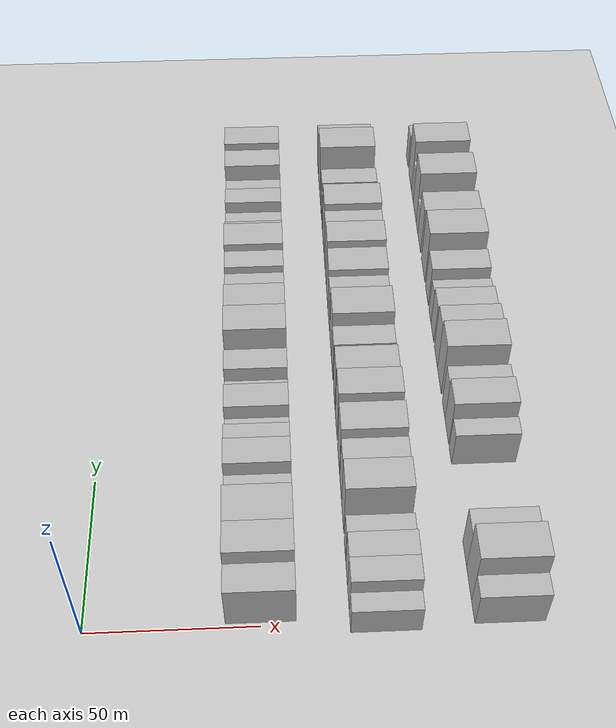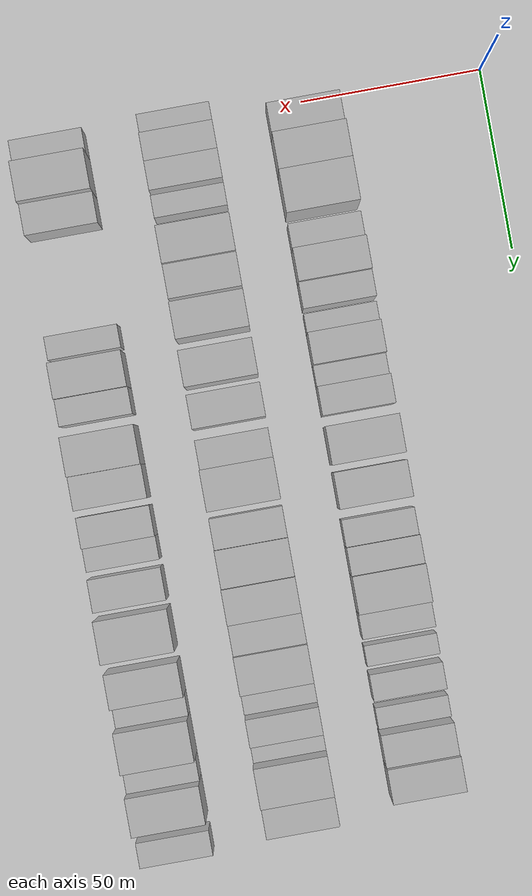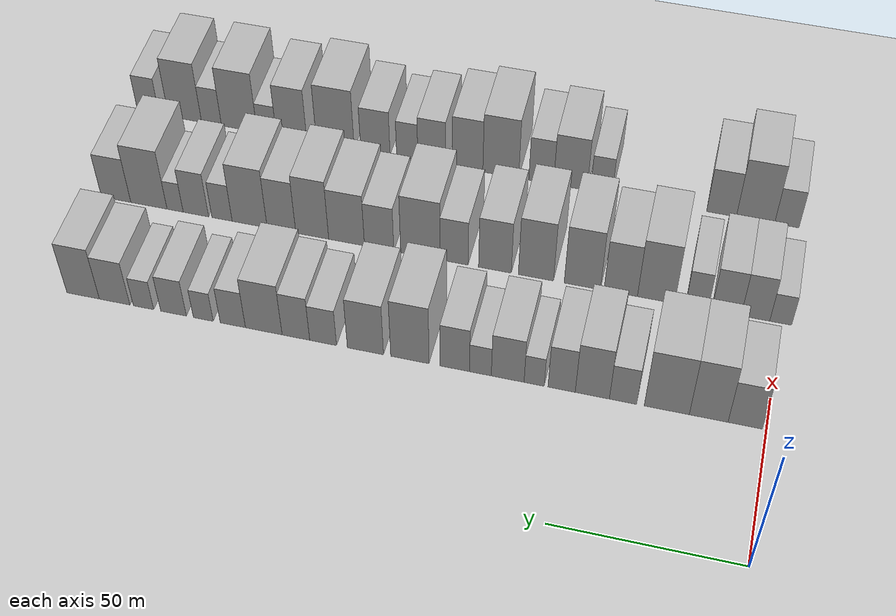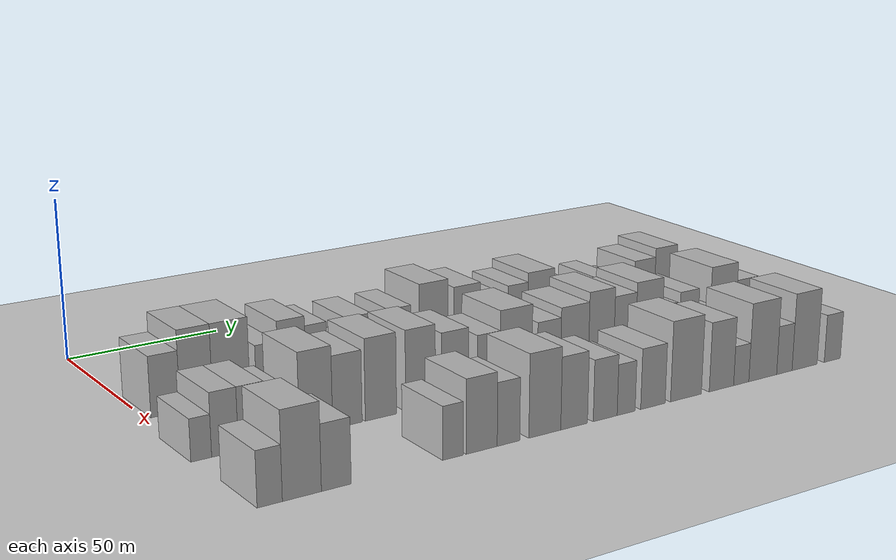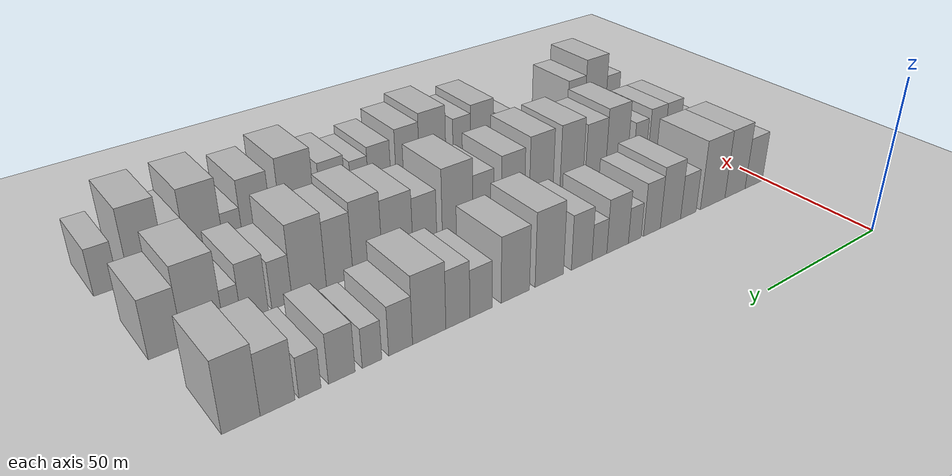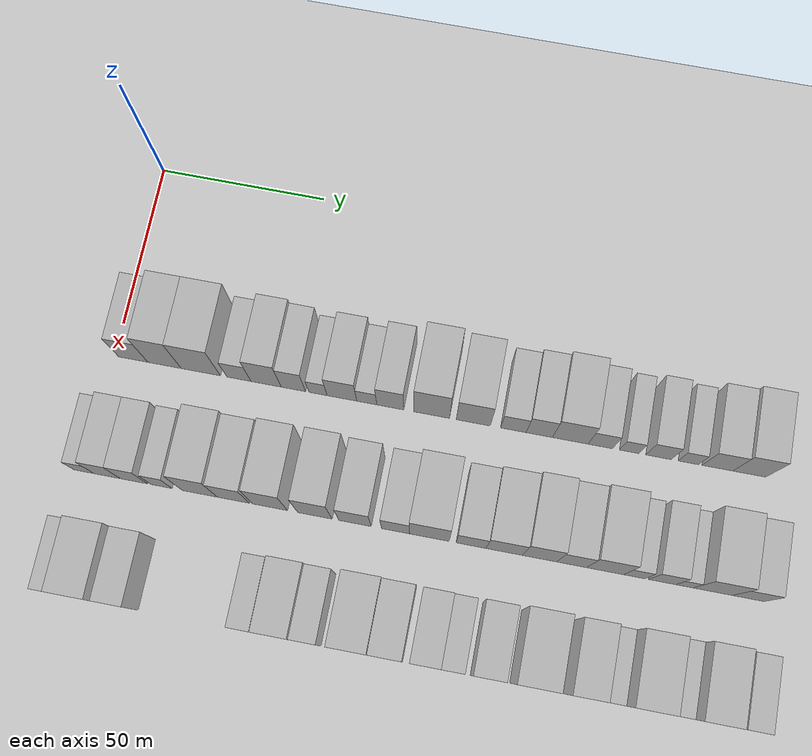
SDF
<sdf version="1.6">
 <world name="default">
  <include>
   <name>ground_plane_2</name>
   <uri>model://HANNAS_ground_plane</uri>
   <pose>100 0 0  0 0 0</pose>
  </include>
  <model name="building_41">
   <static>1</static>
   <pose>50.0000 5.6568 0 0.000000 0.000000 0.000000</pose>
   <link name="link">
    <pose>0 0 9.00 0 0 0</pose>
    <collision name="collision"><geometry><box><size>20.0000 8.8205 18.0000</size></box></geometry></collision>
    <visual name="visual">
     <cast_shadows>0</cast_shadows>
     <geometry><box><size>20.0000 8.8205 18.0000</size></box></geometry>
     <material>
      <script>
       <uri>model://HANNAS_wall/materials/scripts</uri>
       <uri>model://HANNAS_wall/materials/textures</uri>
       <name>vrc/HANNAS_wall</name>
      </script>
     </material>
    </visual>
   </link>
  </model>
  <model name="building_42">
   <static>1</static>
   <pose>50.0000 15.0740 0 0.000000 0.000000 0.000000</pose>
   <link name="link">
    <pose>0 0 12.00 0 0 0</pose>
    <collision name="collision"><geometry><box><size>20.0000 10.0138 24.0000</size></box></geometry></collision>
    <visual name="visual">
     <cast_shadows>0</cast_shadows>
     <geometry><box><size>20.0000 10.0138 24.0000</size></box></geometry>
     <material>
      <script>
       <uri>model://HANNAS_wall/materials/scripts</uri>
       <uri>model://HANNAS_wall/materials/textures</uri>
       <name>vrc/HANNAS_wall</name>
      </script>
     </material>
    </visual>
   </link>
  </model>
  <model name="building_43">
   <static>1</static>
   <pose>50.0000 25.9622 0 0.000000 0.000000 0.000000</pose>
   <link name="link">
    <pose>0 0 12.00 0 0 0</pose>
    <collision name="collision"><geometry><box><size>20.0000 11.7626 24.0000</size></box></geometry></collision>
    <visual name="visual">
     <cast_shadows>0</cast_shadows>
     <geometry><box><size>20.0000 11.7626 24.0000</size></box></geometry>
     <material>
      <script>
       <uri>model://HANNAS_wall/materials/scripts</uri>
       <uri>model://HANNAS_wall/materials/textures</uri>
       <name>vrc/HANNAS_wall</name>
      </script>
     </material>
    </visual>
   </link>
  </model>
  <model name="building_44">
   <static>1</static>
   <pose>50.0000 37.4230 0 0.000000 0.000000 0.000000</pose>
   <link name="link">
    <pose>0 0 7.50 0 0 0</pose>
    <collision name="collision"><geometry><box><size>20.0000 7.1590 15.0000</size></box></geometry></collision>
    <visual name="visual">
     <cast_shadows>0</cast_shadows>
     <geometry><box><size>20.0000 7.1590 15.0000</size></box></geometry>
     <material>
      <script>
       <uri>model://HANNAS_wall/materials/scripts</uri>
       <uri>model://HANNAS_wall/materials/textures</uri>
       <name>vrc/HANNAS_wall</name>
      </script>
     </material>
    </visual>
   </link>
  </model>
  <model name="building_45">
   <static>1</static>
   <pose>50.0000 45.5226 0 0.000000 0.000000 0.000000</pose>
   <link name="link">
    <pose>0 0 10.50 0 0 0</pose>
    <collision name="collision"><geometry><box><size>20.0000 9.0401 21.0000</size></box></geometry></collision>
    <visual name="visual">
     <cast_shadows>0</cast_shadows>
     <geometry><box><size>20.0000 9.0401 21.0000</size></box></geometry>
     <material>
      <script>
       <uri>model://HANNAS_wall/materials/scripts</uri>
       <uri>model://HANNAS_wall/materials/textures</uri>
       <name>vrc/HANNAS_wall</name>
      </script>
     </material>
    </visual>
   </link>
  </model>
  <model name="building_46">
   <static>1</static>
   <pose>50.0000 53.6697 0 0.000000 0.000000 0.000000</pose>
   <link name="link">
    <pose>0 0 9.00 0 0 0</pose>
    <collision name="collision"><geometry><box><size>20.0000 7.2541 18.0000</size></box></geometry></collision>
    <visual name="visual">
     <cast_shadows>0</cast_shadows>
     <geometry><box><size>20.0000 7.2541 18.0000</size></box></geometry>
     <material>
      <script>
       <uri>model://HANNAS_wall/materials/scripts</uri>
       <uri>model://HANNAS_wall/materials/textures</uri>
       <name>vrc/HANNAS_wall</name>
      </script>
     </material>
    </visual>
   </link>
  </model>
  <model name="building_47">
   <static>1</static>
   <pose>50.0000 60.9880 0 0.000000 0.000000 0.000000</pose>
   <link name="link">
    <pose>0 0 6.00 0 0 0</pose>
    <collision name="collision"><geometry><box><size>20.0000 5.3825 12.0000</size></box></geometry></collision>
    <visual name="visual">
     <cast_shadows>0</cast_shadows>
     <geometry><box><size>20.0000 5.3825 12.0000</size></box></geometry>
     <material>
      <script>
       <uri>model://HANNAS_wall/materials/scripts</uri>
       <uri>model://HANNAS_wall/materials/textures</uri>
       <name>vrc/HANNAS_wall</name>
      </script>
     </material>
    </visual>
   </link>
  </model>
  <model name="building_48">
   <static>1</static>
   <pose>50.0000 68.0890 0 0.000000 0.000000 0.000000</pose>
   <link name="link">
    <pose>0 0 9.00 0 0 0</pose>
    <collision name="collision"><geometry><box><size>20.0000 8.8196 18.0000</size></box></geometry></collision>
    <visual name="visual">
     <cast_shadows>0</cast_shadows>
     <geometry><box><size>20.0000 8.8196 18.0000</size></box></geometry>
     <material>
      <script>
       <uri>model://HANNAS_wall/materials/scripts</uri>
       <uri>model://HANNAS_wall/materials/textures</uri>
       <name>vrc/HANNAS_wall</name>
      </script>
     </material>
    </visual>
   </link>
  </model>
  <model name="building_49">
   <static>1</static>
   <pose>50.0000 75.4535 0 0.000000 0.000000 0.000000</pose>
   <link name="link">
    <pose>0 0 6.00 0 0 0</pose>
    <collision name="collision"><geometry><box><size>20.0000 5.9093 12.0000</size></box></geometry></collision>
    <visual name="visual">
     <cast_shadows>0</cast_shadows>
     <geometry><box><size>20.0000 5.9093 12.0000</size></box></geometry>
     <material>
      <script>
       <uri>model://HANNAS_wall/materials/scripts</uri>
       <uri>model://HANNAS_wall/materials/textures</uri>
       <name>vrc/HANNAS_wall</name>
      </script>
     </material>
    </visual>
   </link>
  </model>
  <model name="building_50">
   <static>1</static>
   <pose>50.0000 82.3979 0 0.000000 0.000000 0.000000</pose>
   <link name="link">
    <pose>0 0 9.00 0 0 0</pose>
    <collision name="collision"><geometry><box><size>20.0000 7.9795 18.0000</size></box></geometry></collision>
    <visual name="visual">
     <cast_shadows>0</cast_shadows>
     <geometry><box><size>20.0000 7.9795 18.0000</size></box></geometry>
     <material>
      <script>
       <uri>model://HANNAS_wall/materials/scripts</uri>
       <uri>model://HANNAS_wall/materials/textures</uri>
       <name>vrc/HANNAS_wall</name>
      </script>
     </material>
    </visual>
   </link>
  </model>
  <model name="building_51">
   <static>1</static>
   <pose>50.0000 94.6250 0 0.000000 0.000000 0.000000</pose>
   <link name="link">
    <pose>0 0 12.00 0 0 0</pose>
    <collision name="collision"><geometry><box><size>20.0000 10.4747 24.0000</size></box></geometry></collision>
    <visual name="visual">
     <cast_shadows>0</cast_shadows>
     <geometry><box><size>20.0000 10.4747 24.0000</size></box></geometry>
     <material>
      <script>
       <uri>model://HANNAS_wall/materials/scripts</uri>
       <uri>model://HANNAS_wall/materials/textures</uri>
       <name>vrc/HANNAS_wall</name>
      </script>
     </material>
    </visual>
   </link>
  </model>
  <model name="building_52">
   <static>1</static>
   <pose>50.0000 106.8506 0 0.000000 0.000000 0.000000</pose>
   <link name="link">
    <pose>0 0 10.50 0 0 0</pose>
    <collision name="collision"><geometry><box><size>20.0000 9.9764 21.0000</size></box></geometry></collision>
    <visual name="visual">
     <cast_shadows>0</cast_shadows>
     <geometry><box><size>20.0000 9.9764 21.0000</size></box></geometry>
     <material>
      <script>
       <uri>model://HANNAS_wall/materials/scripts</uri>
       <uri>model://HANNAS_wall/materials/textures</uri>
       <name>vrc/HANNAS_wall</name>
      </script>
     </material>
    </visual>
   </link>
  </model>
  <model name="building_53">
   <static>1</static>
   <pose>50.0000 118.5777 0 0.000000 0.000000 0.000000</pose>
   <link name="link">
    <pose>0 0 7.50 0 0 0</pose>
    <collision name="collision"><geometry><box><size>20.0000 7.4779 15.0000</size></box></geometry></collision>
    <visual name="visual">
     <cast_shadows>0</cast_shadows>
     <geometry><box><size>20.0000 7.4779 15.0000</size></box></geometry>
     <material>
      <script>
       <uri>model://HANNAS_wall/materials/scripts</uri>
       <uri>model://HANNAS_wall/materials/textures</uri>
       <name>vrc/HANNAS_wall</name>
      </script>
     </material>
    </visual>
   </link>
  </model>
  <model name="building_54">
   <static>1</static>
   <pose>50.0000 126.1805 0 0.000000 0.000000 0.000000</pose>
   <link name="link">
    <pose>0 0 9.00 0 0 0</pose>
    <collision name="collision"><geometry><box><size>20.0000 7.7276 18.0000</size></box></geometry></collision>
    <visual name="visual">
     <cast_shadows>0</cast_shadows>
     <geometry><box><size>20.0000 7.7276 18.0000</size></box></geometry>
     <material>
      <script>
       <uri>model://HANNAS_wall/materials/scripts</uri>
       <uri>model://HANNAS_wall/materials/textures</uri>
       <name>vrc/HANNAS_wall</name>
      </script>
     </material>
    </visual>
   </link>
  </model>
  <model name="building_55">
   <static>1</static>
   <pose>50.0000 135.2170 0 0.000000 0.000000 0.000000</pose>
   <link name="link">
    <pose>0 0 10.50 0 0 0</pose>
    <collision name="collision"><geometry><box><size>20.0000 10.3455 21.0000</size></box></geometry></collision>
    <visual name="visual">
     <cast_shadows>0</cast_shadows>
     <geometry><box><size>20.0000 10.3455 21.0000</size></box></geometry>
     <material>
      <script>
       <uri>model://HANNAS_wall/materials/scripts</uri>
       <uri>model://HANNAS_wall/materials/textures</uri>
       <name>vrc/HANNAS_wall</name>
      </script>
     </material>
    </visual>
   </link>
  </model>
  <model name="building_56">
   <static>1</static>
   <pose>50.0000 143.9583 0 0.000000 0.000000 0.000000</pose>
   <link name="link">
    <pose>0 0 7.50 0 0 0</pose>
    <collision name="collision"><geometry><box><size>20.0000 7.1372 15.0000</size></box></geometry></collision>
    <visual name="visual">
     <cast_shadows>0</cast_shadows>
     <geometry><box><size>20.0000 7.1372 15.0000</size></box></geometry>
     <material>
      <script>
       <uri>model://HANNAS_wall/materials/scripts</uri>
       <uri>model://HANNAS_wall/materials/textures</uri>
       <name>vrc/HANNAS_wall</name>
      </script>
     </material>
    </visual>
   </link>
  </model>
  <model name="building_57">
   <static>1</static>
   <pose>50.0000 152.3518 0 0.000000 0.000000 0.000000</pose>
   <link name="link">
    <pose>0 0 6.00 0 0 0</pose>
    <collision name="collision"><geometry><box><size>20.0000 5.6498 12.0000</size></box></geometry></collision>
    <visual name="visual">
     <cast_shadows>0</cast_shadows>
     <geometry><box><size>20.0000 5.6498 12.0000</size></box></geometry>
     <material>
      <script>
       <uri>model://HANNAS_wall/materials/scripts</uri>
       <uri>model://HANNAS_wall/materials/textures</uri>
       <name>vrc/HANNAS_wall</name>
      </script>
     </material>
    </visual>
   </link>
  </model>
  <model name="building_58">
   <static>1</static>
   <pose>50.0000 160.8615 0 0.000000 0.000000 0.000000</pose>
   <link name="link">
    <pose>0 0 7.50 0 0 0</pose>
    <collision name="collision"><geometry><box><size>20.0000 7.3695 15.0000</size></box></geometry></collision>
    <visual name="visual">
     <cast_shadows>0</cast_shadows>
     <geometry><box><size>20.0000 7.3695 15.0000</size></box></geometry>
     <material>
      <script>
       <uri>model://HANNAS_wall/materials/scripts</uri>
       <uri>model://HANNAS_wall/materials/textures</uri>
       <name>vrc/HANNAS_wall</name>
      </script>
     </material>
    </visual>
   </link>
  </model>
  <model name="building_59">
   <static>1</static>
   <pose>50.0000 169.4913 0 0.000000 0.000000 0.000000</pose>
   <link name="link">
    <pose>0 0 6.00 0 0 0</pose>
    <collision name="collision"><geometry><box><size>20.0000 5.8902 12.0000</size></box></geometry></collision>
    <visual name="visual">
     <cast_shadows>0</cast_shadows>
     <geometry><box><size>20.0000 5.8902 12.0000</size></box></geometry>
     <material>
      <script>
       <uri>model://HANNAS_wall/materials/scripts</uri>
       <uri>model://HANNAS_wall/materials/textures</uri>
       <name>vrc/HANNAS_wall</name>
      </script>
     </material>
    </visual>
   </link>
  </model>
  <model name="building_60">
   <static>1</static>
   <pose>50.0000 177.8740 0 0.000000 0.000000 0.000000</pose>
   <link name="link">
    <pose>0 0 9.00 0 0 0</pose>
    <collision name="collision"><geometry><box><size>20.0000 8.8753 18.0000</size></box></geometry></collision>
    <visual name="visual">
     <cast_shadows>0</cast_shadows>
     <geometry><box><size>20.0000 8.8753 18.0000</size></box></geometry>
     <material>
      <script>
       <uri>model://HANNAS_wall/materials/scripts</uri>
       <uri>model://HANNAS_wall/materials/textures</uri>
       <name>vrc/HANNAS_wall</name>
      </script>
     </material>
    </visual>
   </link>
  </model>
  <model name="building_61">
   <static>1</static>
   <pose>50.0000 187.0451 0 0.000000 0.000000 0.000000</pose>
   <link name="link">
    <pose>0 0 10.50 0 0 0</pose>
    <collision name="collision"><geometry><box><size>20.0000 9.4669 21.0000</size></box></geometry></collision>
    <visual name="visual">
     <cast_shadows>0</cast_shadows>
     <geometry><box><size>20.0000 9.4669 21.0000</size></box></geometry>
     <material>
      <script>
       <uri>model://HANNAS_wall/materials/scripts</uri>
       <uri>model://HANNAS_wall/materials/textures</uri>
       <name>vrc/HANNAS_wall</name>
      </script>
     </material>
    </visual>
   </link>
  </model>
  <model name="building_121">
   <static>1</static>
   <pose>85.0000 0.0649 0 0.000000 0.000000 0.000000</pose>
   <link name="link">
    <pose>0 0 6.00 0 0 0</pose>
    <collision name="collision"><geometry><box><size>20.0000 5.9179 12.0000</size></box></geometry></collision>
    <visual name="visual">
     <cast_shadows>0</cast_shadows>
     <geometry><box><size>20.0000 5.9179 12.0000</size></box></geometry>
     <material>
      <script>
       <uri>model://HANNAS_wall/materials/scripts</uri>
       <uri>model://HANNAS_wall/materials/textures</uri>
       <name>vrc/HANNAS_wall</name>
      </script>
     </material>
    </visual>
   </link>
  </model>
  <model name="building_122">
   <static>1</static>
   <pose>85.0000 6.8946 0 0.000000 0.000000 0.000000</pose>
   <link name="link">
    <pose>0 0 9.00 0 0 0</pose>
    <collision name="collision"><geometry><box><size>20.0000 7.7413 18.0000</size></box></geometry></collision>
    <visual name="visual">
     <cast_shadows>0</cast_shadows>
     <geometry><box><size>20.0000 7.7413 18.0000</size></box></geometry>
     <material>
      <script>
       <uri>model://HANNAS_wall/materials/scripts</uri>
       <uri>model://HANNAS_wall/materials/textures</uri>
       <name>vrc/HANNAS_wall</name>
      </script>
     </material>
    </visual>
   </link>
  </model>
  <model name="building_123">
   <static>1</static>
   <pose>85.0000 14.7565 0 0.000000 0.000000 0.000000</pose>
   <link name="link">
    <pose>0 0 9.00 0 0 0</pose>
    <collision name="collision"><geometry><box><size>20.0000 7.9826 18.0000</size></box></geometry></collision>
    <visual name="visual">
     <cast_shadows>0</cast_shadows>
     <geometry><box><size>20.0000 7.9826 18.0000</size></box></geometry>
     <material>
      <script>
       <uri>model://HANNAS_wall/materials/scripts</uri>
       <uri>model://HANNAS_wall/materials/textures</uri>
       <name>vrc/HANNAS_wall</name>
      </script>
     </material>
    </visual>
   </link>
  </model>
  <model name="building_124">
   <static>1</static>
   <pose>85.0000 22.8394 0 0.000000 0.000000 0.000000</pose>
   <link name="link">
    <pose>0 0 7.50 0 0 0</pose>
    <collision name="collision"><geometry><box><size>20.0000 6.1832 15.0000</size></box></geometry></collision>
    <visual name="visual">
     <cast_shadows>0</cast_shadows>
     <geometry><box><size>20.0000 6.1832 15.0000</size></box></geometry>
     <material>
      <script>
       <uri>model://HANNAS_wall/materials/scripts</uri>
       <uri>model://HANNAS_wall/materials/textures</uri>
       <name>vrc/HANNAS_wall</name>
      </script>
     </material>
    </visual>
   </link>
  </model>
  <model name="building_125">
   <static>1</static>
   <pose>85.0000 34.0592 0 0.000000 0.000000 0.000000</pose>
   <link name="link">
    <pose>0 0 12.00 0 0 0</pose>
    <collision name="collision"><geometry><box><size>20.0000 10.2564 24.0000</size></box></geometry></collision>
    <visual name="visual">
     <cast_shadows>0</cast_shadows>
     <geometry><box><size>20.0000 10.2564 24.0000</size></box></geometry>
     <material>
      <script>
       <uri>model://HANNAS_wall/materials/scripts</uri>
       <uri>model://HANNAS_wall/materials/textures</uri>
       <name>vrc/HANNAS_wall</name>
      </script>
     </material>
    </visual>
   </link>
  </model>
  <model name="building_126">
   <static>1</static>
   <pose>85.0000 43.8314 0 0.000000 0.000000 0.000000</pose>
   <link name="link">
    <pose>0 0 10.50 0 0 0</pose>
    <collision name="collision"><geometry><box><size>20.0000 9.2879 21.0000</size></box></geometry></collision>
    <visual name="visual">
     <cast_shadows>0</cast_shadows>
     <geometry><box><size>20.0000 9.2879 21.0000</size></box></geometry>
     <material>
      <script>
       <uri>model://HANNAS_wall/materials/scripts</uri>
       <uri>model://HANNAS_wall/materials/textures</uri>
       <name>vrc/HANNAS_wall</name>
      </script>
     </material>
    </visual>
   </link>
  </model>
  <model name="building_127">
   <static>1</static>
   <pose>85.0000 54.5358 0 0.000000 0.000000 0.000000</pose>
   <link name="link">
    <pose>0 0 12.00 0 0 0</pose>
    <collision name="collision"><geometry><box><size>20.0000 10.1209 24.0000</size></box></geometry></collision>
    <visual name="visual">
     <cast_shadows>0</cast_shadows>
     <geometry><box><size>20.0000 10.1209 24.0000</size></box></geometry>
     <material>
      <script>
       <uri>model://HANNAS_wall/materials/scripts</uri>
       <uri>model://HANNAS_wall/materials/textures</uri>
       <name>vrc/HANNAS_wall</name>
      </script>
     </material>
    </visual>
   </link>
  </model>
  <model name="building_128">
   <static>1</static>
   <pose>85.0000 67.5538 0 0.000000 0.000000 0.000000</pose>
   <link name="link">
    <pose>0 0 12.00 0 0 0</pose>
    <collision name="collision"><geometry><box><size>20.0000 9.9152 24.0000</size></box></geometry></collision>
    <visual name="visual">
     <cast_shadows>0</cast_shadows>
     <geometry><box><size>20.0000 9.9152 24.0000</size></box></geometry>
     <material>
      <script>
       <uri>model://HANNAS_wall/materials/scripts</uri>
       <uri>model://HANNAS_wall/materials/textures</uri>
       <name>vrc/HANNAS_wall</name>
      </script>
     </material>
    </visual>
   </link>
  </model>
  <model name="building_129">
   <static>1</static>
   <pose>85.0000 79.1601 0 0.000000 0.000000 0.000000</pose>
   <link name="link">
    <pose>0 0 10.50 0 0 0</pose>
    <collision name="collision"><geometry><box><size>20.0000 9.2975 21.0000</size></box></geometry></collision>
    <visual name="visual">
     <cast_shadows>0</cast_shadows>
     <geometry><box><size>20.0000 9.2975 21.0000</size></box></geometry>
     <material>
      <script>
       <uri>model://HANNAS_wall/materials/scripts</uri>
       <uri>model://HANNAS_wall/materials/textures</uri>
       <name>vrc/HANNAS_wall</name>
      </script>
     </material>
    </visual>
   </link>
  </model>
  <model name="building_130">
   <static>1</static>
   <pose>85.0000 90.8183 0 0.000000 0.000000 0.000000</pose>
   <link name="link">
    <pose>0 0 9.00 0 0 0</pose>
    <collision name="collision"><geometry><box><size>20.0000 8.0189 18.0000</size></box></geometry></collision>
    <visual name="visual">
     <cast_shadows>0</cast_shadows>
     <geometry><box><size>20.0000 8.0189 18.0000</size></box></geometry>
     <material>
      <script>
       <uri>model://HANNAS_wall/materials/scripts</uri>
       <uri>model://HANNAS_wall/materials/textures</uri>
       <name>vrc/HANNAS_wall</name>
      </script>
     </material>
    </visual>
   </link>
  </model>
  <model name="building_131">
   <static>1</static>
   <pose>85.0000 100.4980 0 0.000000 0.000000 0.000000</pose>
   <link name="link">
    <pose>0 0 12.00 0 0 0</pose>
    <collision name="collision"><geometry><box><size>20.0000 11.3405 24.0000</size></box></geometry></collision>
    <visual name="visual">
     <cast_shadows>0</cast_shadows>
     <geometry><box><size>20.0000 11.3405 24.0000</size></box></geometry>
     <material>
      <script>
       <uri>model://HANNAS_wall/materials/scripts</uri>
       <uri>model://HANNAS_wall/materials/textures</uri>
       <name>vrc/HANNAS_wall</name>
      </script>
     </material>
    </visual>
   </link>
  </model>
  <model name="building_132">
   <static>1</static>
   <pose>85.0000 112.4311 0 0.000000 0.000000 0.000000</pose>
   <link name="link">
    <pose>0 0 9.00 0 0 0</pose>
    <collision name="collision"><geometry><box><size>20.0000 8.5258 18.0000</size></box></geometry></collision>
    <visual name="visual">
     <cast_shadows>0</cast_shadows>
     <geometry><box><size>20.0000 8.5258 18.0000</size></box></geometry>
     <material>
      <script>
       <uri>model://HANNAS_wall/materials/scripts</uri>
       <uri>model://HANNAS_wall/materials/textures</uri>
       <name>vrc/HANNAS_wall</name>
      </script>
     </material>
    </visual>
   </link>
  </model>
  <model name="building_133">
   <static>1</static>
   <pose>85.0000 121.9267 0 0.000000 0.000000 0.000000</pose>
   <link name="link">
    <pose>0 0 10.50 0 0 0</pose>
    <collision name="collision"><geometry><box><size>20.0000 10.4655 21.0000</size></box></geometry></collision>
    <visual name="visual">
     <cast_shadows>0</cast_shadows>
     <geometry><box><size>20.0000 10.4655 21.0000</size></box></geometry>
     <material>
      <script>
       <uri>model://HANNAS_wall/materials/scripts</uri>
       <uri>model://HANNAS_wall/materials/textures</uri>
       <name>vrc/HANNAS_wall</name>
      </script>
     </material>
    </visual>
   </link>
  </model>
  <model name="building_134">
   <static>1</static>
   <pose>85.0000 132.0013 0 0.000000 0.000000 0.000000</pose>
   <link name="link">
    <pose>0 0 12.00 0 0 0</pose>
    <collision name="collision"><geometry><box><size>20.0000 9.6837 24.0000</size></box></geometry></collision>
    <visual name="visual">
     <cast_shadows>0</cast_shadows>
     <geometry><box><size>20.0000 9.6837 24.0000</size></box></geometry>
     <material>
      <script>
       <uri>model://HANNAS_wall/materials/scripts</uri>
       <uri>model://HANNAS_wall/materials/textures</uri>
       <name>vrc/HANNAS_wall</name>
      </script>
     </material>
    </visual>
   </link>
  </model>
  <model name="building_135">
   <static>1</static>
   <pose>85.0000 141.0884 0 0.000000 0.000000 0.000000</pose>
   <link name="link">
    <pose>0 0 10.50 0 0 0</pose>
    <collision name="collision"><geometry><box><size>20.0000 8.4907 21.0000</size></box></geometry></collision>
    <visual name="visual">
     <cast_shadows>0</cast_shadows>
     <geometry><box><size>20.0000 8.4907 21.0000</size></box></geometry>
     <material>
      <script>
       <uri>model://HANNAS_wall/materials/scripts</uri>
       <uri>model://HANNAS_wall/materials/textures</uri>
       <name>vrc/HANNAS_wall</name>
      </script>
     </material>
    </visual>
   </link>
  </model>
  <model name="building_136">
   <static>1</static>
   <pose>85.0000 150.5557 0 0.000000 0.000000 0.000000</pose>
   <link name="link">
    <pose>0 0 12.00 0 0 0</pose>
    <collision name="collision"><geometry><box><size>20.0000 10.4438 24.0000</size></box></geometry></collision>
    <visual name="visual">
     <cast_shadows>0</cast_shadows>
     <geometry><box><size>20.0000 10.4438 24.0000</size></box></geometry>
     <material>
      <script>
       <uri>model://HANNAS_wall/materials/scripts</uri>
       <uri>model://HANNAS_wall/materials/textures</uri>
       <name>vrc/HANNAS_wall</name>
      </script>
     </material>
    </visual>
   </link>
  </model>
  <model name="building_137">
   <static>1</static>
   <pose>85.0000 158.8061 0 0.000000 0.000000 0.000000</pose>
   <link name="link">
    <pose>0 0 7.50 0 0 0</pose>
    <collision name="collision"><geometry><box><size>20.0000 6.0569 15.0000</size></box></geometry></collision>
    <visual name="visual">
     <cast_shadows>0</cast_shadows>
     <geometry><box><size>20.0000 6.0569 15.0000</size></box></geometry>
     <material>
      <script>
       <uri>model://HANNAS_wall/materials/scripts</uri>
       <uri>model://HANNAS_wall/materials/textures</uri>
       <name>vrc/HANNAS_wall</name>
      </script>
     </material>
    </visual>
   </link>
  </model>
  <model name="building_138">
   <static>1</static>
   <pose>85.0000 166.6621 0 0.000000 0.000000 0.000000</pose>
   <link name="link">
    <pose>0 0 9.00 0 0 0</pose>
    <collision name="collision"><geometry><box><size>20.0000 7.6552 18.0000</size></box></geometry></collision>
    <visual name="visual">
     <cast_shadows>0</cast_shadows>
     <geometry><box><size>20.0000 7.6552 18.0000</size></box></geometry>
     <material>
      <script>
       <uri>model://HANNAS_wall/materials/scripts</uri>
       <uri>model://HANNAS_wall/materials/textures</uri>
       <name>vrc/HANNAS_wall</name>
      </script>
     </material>
    </visual>
   </link>
  </model>
  <model name="building_139">
   <static>1</static>
   <pose>85.0000 172.9366 0 0.000000 0.000000 0.000000</pose>
   <link name="link">
    <pose>0 0 6.00 0 0 0</pose>
    <collision name="collision"><geometry><box><size>20.0000 4.8937 12.0000</size></box></geometry></collision>
    <visual name="visual">
     <cast_shadows>0</cast_shadows>
     <geometry><box><size>20.0000 4.8937 12.0000</size></box></geometry>
     <material>
      <script>
       <uri>model://HANNAS_wall/materials/scripts</uri>
       <uri>model://HANNAS_wall/materials/textures</uri>
       <name>vrc/HANNAS_wall</name>
      </script>
     </material>
    </visual>
   </link>
  </model>
  <model name="building_140">
   <static>1</static>
   <pose>85.0000 180.8927 0 0.000000 0.000000 0.000000</pose>
   <link name="link">
    <pose>0 0 12.00 0 0 0</pose>
    <collision name="collision"><geometry><box><size>20.0000 11.0185 24.0000</size></box></geometry></collision>
    <visual name="visual">
     <cast_shadows>0</cast_shadows>
     <geometry><box><size>20.0000 11.0185 24.0000</size></box></geometry>
     <material>
      <script>
       <uri>model://HANNAS_wall/materials/scripts</uri>
       <uri>model://HANNAS_wall/materials/textures</uri>
       <name>vrc/HANNAS_wall</name>
      </script>
     </material>
    </visual>
   </link>
  </model>
  <model name="building_141">
   <static>1</static>
   <pose>85.0000 190.8911 0 0.000000 0.000000 0.000000</pose>
   <link name="link">
    <pose>0 0 9.00 0 0 0</pose>
    <collision name="collision"><geometry><box><size>20.0000 8.9783 18.0000</size></box></geometry></collision>
    <visual name="visual">
     <cast_shadows>0</cast_shadows>
     <geometry><box><size>20.0000 8.9783 18.0000</size></box></geometry>
     <material>
      <script>
       <uri>model://HANNAS_wall/materials/scripts</uri>
       <uri>model://HANNAS_wall/materials/textures</uri>
       <name>vrc/HANNAS_wall</name>
      </script>
     </material>
    </visual>
   </link>
  </model>
  <model name="building_203">
   <static>1</static>
   <pose>120.0000 1.8543 0 0.000000 0.000000 0.000000</pose>
   <link name="link">
    <pose>0 0 7.50 0 0 0</pose>
    <collision name="collision"><geometry><box><size>20.0000 6.9018 15.0000</size></box></geometry></collision>
    <visual name="visual">
     <cast_shadows>0</cast_shadows>
     <geometry><box><size>20.0000 6.9018 15.0000</size></box></geometry>
     <material>
      <script>
       <uri>model://HANNAS_wall/materials/scripts</uri>
       <uri>model://HANNAS_wall/materials/textures</uri>
       <name>vrc/HANNAS_wall</name>
      </script>
     </material>
    </visual>
   </link>
  </model>
  <model name="building_204">
   <static>1</static>
   <pose>120.0000 10.7511 0 0.000000 0.000000 0.000000</pose>
   <link name="link">
    <pose>0 0 12.00 0 0 0</pose>
    <collision name="collision"><geometry><box><size>20.0000 10.8918 24.0000</size></box></geometry></collision>
    <visual name="visual">
     <cast_shadows>0</cast_shadows>
     <geometry><box><size>20.0000 10.8918 24.0000</size></box></geometry>
     <material>
      <script>
       <uri>model://HANNAS_wall/materials/scripts</uri>
       <uri>model://HANNAS_wall/materials/textures</uri>
       <name>vrc/HANNAS_wall</name>
      </script>
     </material>
    </visual>
   </link>
  </model>
  <model name="building_205">
   <static>1</static>
   <pose>120.0000 20.4622 0 0.000000 0.000000 0.000000</pose>
   <link name="link">
    <pose>0 0 9.00 0 0 0</pose>
    <collision name="collision"><geometry><box><size>20.0000 8.5303 18.0000</size></box></geometry></collision>
    <visual name="visual">
     <cast_shadows>0</cast_shadows>
     <geometry><box><size>20.0000 8.5303 18.0000</size></box></geometry>
     <material>
      <script>
       <uri>model://HANNAS_wall/materials/scripts</uri>
       <uri>model://HANNAS_wall/materials/textures</uri>
       <name>vrc/HANNAS_wall</name>
      </script>
     </material>
    </visual>
   </link>
  </model>
  <model name="building_206">
   <static>1</static>
   <pose>120.0000 55.2980 0 0.000000 0.000000 0.000000</pose>
   <link name="link">
    <pose>0 0 7.50 0 0 0</pose>
    <collision name="collision"><geometry><box><size>20.0000 6.3804 15.0000</size></box></geometry></collision>
    <visual name="visual">
     <cast_shadows>0</cast_shadows>
     <geometry><box><size>20.0000 6.3804 15.0000</size></box></geometry>
     <material>
      <script>
       <uri>model://HANNAS_wall/materials/scripts</uri>
       <uri>model://HANNAS_wall/materials/textures</uri>
       <name>vrc/HANNAS_wall</name>
      </script>
     </material>
    </visual>
   </link>
  </model>
  <model name="building_207">
   <static>1</static>
   <pose>120.0000 64.4210 0 0.000000 0.000000 0.000000</pose>
   <link name="link">
    <pose>0 0 10.50 0 0 0</pose>
    <collision name="collision"><geometry><box><size>20.0000 9.8655 21.0000</size></box></geometry></collision>
    <visual name="visual">
     <cast_shadows>0</cast_shadows>
     <geometry><box><size>20.0000 9.8655 21.0000</size></box></geometry>
     <material>
      <script>
       <uri>model://HANNAS_wall/materials/scripts</uri>
       <uri>model://HANNAS_wall/materials/textures</uri>
       <name>vrc/HANNAS_wall</name>
      </script>
     </material>
    </visual>
   </link>
  </model>
  <model name="building_208">
   <static>1</static>
   <pose>120.0000 73.0295 0 0.000000 0.000000 0.000000</pose>
   <link name="link">
    <pose>0 0 9.00 0 0 0</pose>
    <collision name="collision"><geometry><box><size>20.0000 7.3517 18.0000</size></box></geometry></collision>
    <visual name="visual">
     <cast_shadows>0</cast_shadows>
     <geometry><box><size>20.0000 7.3517 18.0000</size></box></geometry>
     <material>
      <script>
       <uri>model://HANNAS_wall/materials/scripts</uri>
       <uri>model://HANNAS_wall/materials/textures</uri>
       <name>vrc/HANNAS_wall</name>
      </script>
     </material>
    </visual>
   </link>
  </model>
  <model name="building_209">
   <static>1</static>
   <pose>120.0000 85.0621 0 0.000000 0.000000 0.000000</pose>
   <link name="link">
    <pose>0 0 12.00 0 0 0</pose>
    <collision name="collision"><geometry><box><size>20.0000 10.7135 24.0000</size></box></geometry></collision>
    <visual name="visual">
     <cast_shadows>0</cast_shadows>
     <geometry><box><size>20.0000 10.7135 24.0000</size></box></geometry>
     <material>
      <script>
       <uri>model://HANNAS_wall/materials/scripts</uri>
       <uri>model://HANNAS_wall/materials/textures</uri>
       <name>vrc/HANNAS_wall</name>
      </script>
     </material>
    </visual>
   </link>
  </model>
  <model name="building_210">
   <static>1</static>
   <pose>120.0000 95.0073 0 0.000000 0.000000 0.000000</pose>
   <link name="link">
    <pose>0 0 10.50 0 0 0</pose>
    <collision name="collision"><geometry><box><size>20.0000 9.1768 21.0000</size></box></geometry></collision>
    <visual name="visual">
     <cast_shadows>0</cast_shadows>
     <geometry><box><size>20.0000 9.1768 21.0000</size></box></geometry>
     <material>
      <script>
       <uri>model://HANNAS_wall/materials/scripts</uri>
       <uri>model://HANNAS_wall/materials/textures</uri>
       <name>vrc/HANNAS_wall</name>
      </script>
     </material>
    </visual>
   </link>
  </model>
  <model name="building_211">
   <static>1</static>
   <pose>120.0000 105.8113 0 0.000000 0.000000 0.000000</pose>
   <link name="link">
    <pose>0 0 9.00 0 0 0</pose>
    <collision name="collision"><geometry><box><size>20.0000 8.4311 18.0000</size></box></geometry></collision>
    <visual name="visual">
     <cast_shadows>0</cast_shadows>
     <geometry><box><size>20.0000 8.4311 18.0000</size></box></geometry>
     <material>
      <script>
       <uri>model://HANNAS_wall/materials/scripts</uri>
       <uri>model://HANNAS_wall/materials/textures</uri>
       <name>vrc/HANNAS_wall</name>
      </script>
     </material>
    </visual>
   </link>
  </model>
  <model name="building_212">
   <static>1</static>
   <pose>120.0000 113.2485 0 0.000000 0.000000 0.000000</pose>
   <link name="link">
    <pose>0 0 7.50 0 0 0</pose>
    <collision name="collision"><geometry><box><size>20.0000 6.4434 15.0000</size></box></geometry></collision>
    <visual name="visual">
     <cast_shadows>0</cast_shadows>
     <geometry><box><size>20.0000 6.4434 15.0000</size></box></geometry>
     <material>
      <script>
       <uri>model://HANNAS_wall/materials/scripts</uri>
       <uri>model://HANNAS_wall/materials/textures</uri>
       <name>vrc/HANNAS_wall</name>
      </script>
     </material>
    </visual>
   </link>
  </model>
  <model name="building_213">
   <static>1</static>
   <pose>120.0000 122.9533 0 0.000000 0.000000 0.000000</pose>
   <link name="link">
    <pose>0 0 9.00 0 0 0</pose>
    <collision name="collision"><geometry><box><size>20.0000 8.9662 18.0000</size></box></geometry></collision>
    <visual name="visual">
     <cast_shadows>0</cast_shadows>
     <geometry><box><size>20.0000 8.9662 18.0000</size></box></geometry>
     <material>
      <script>
       <uri>model://HANNAS_wall/materials/scripts</uri>
       <uri>model://HANNAS_wall/materials/textures</uri>
       <name>vrc/HANNAS_wall</name>
      </script>
     </material>
    </visual>
   </link>
  </model>
  <model name="building_214">
   <static>1</static>
   <pose>120.0000 135.2505 0 0.000000 0.000000 0.000000</pose>
   <link name="link">
    <pose>0 0 12.00 0 0 0</pose>
    <collision name="collision"><geometry><box><size>20.0000 11.6281 24.0000</size></box></geometry></collision>
    <visual name="visual">
     <cast_shadows>0</cast_shadows>
     <geometry><box><size>20.0000 11.6281 24.0000</size></box></geometry>
     <material>
      <script>
       <uri>model://HANNAS_wall/materials/scripts</uri>
       <uri>model://HANNAS_wall/materials/textures</uri>
       <name>vrc/HANNAS_wall</name>
      </script>
     </material>
    </visual>
   </link>
  </model>
  <model name="building_215">
   <static>1</static>
   <pose>120.0000 148.8111 0 0.000000 0.000000 0.000000</pose>
   <link name="link">
    <pose>0 0 10.50 0 0 0</pose>
    <collision name="collision"><geometry><box><size>20.0000 9.4932 21.0000</size></box></geometry></collision>
    <visual name="visual">
     <cast_shadows>0</cast_shadows>
     <geometry><box><size>20.0000 9.4932 21.0000</size></box></geometry>
     <material>
      <script>
       <uri>model://HANNAS_wall/materials/scripts</uri>
       <uri>model://HANNAS_wall/materials/textures</uri>
       <name>vrc/HANNAS_wall</name>
      </script>
     </material>
    </visual>
   </link>
  </model>
  <model name="building_216">
   <static>1</static>
   <pose>120.0000 156.5576 0 0.000000 0.000000 0.000000</pose>
   <link name="link">
    <pose>0 0 6.00 0 0 0</pose>
    <collision name="collision"><geometry><box><size>20.0000 5.9997 12.0000</size></box></geometry></collision>
    <visual name="visual">
     <cast_shadows>0</cast_shadows>
     <geometry><box><size>20.0000 5.9997 12.0000</size></box></geometry>
     <material>
      <script>
       <uri>model://HANNAS_wall/materials/scripts</uri>
       <uri>model://HANNAS_wall/materials/textures</uri>
       <name>vrc/HANNAS_wall</name>
      </script>
     </material>
    </visual>
   </link>
  </model>
  <model name="building_217">
   <static>1</static>
   <pose>120.0000 165.1559 0 0.000000 0.000000 0.000000</pose>
   <link name="link">
    <pose>0 0 12.00 0 0 0</pose>
    <collision name="collision"><geometry><box><size>20.0000 11.1968 24.0000</size></box></geometry></collision>
    <visual name="visual">
     <cast_shadows>0</cast_shadows>
     <geometry><box><size>20.0000 11.1968 24.0000</size></box></geometry>
     <material>
      <script>
       <uri>model://HANNAS_wall/materials/scripts</uri>
       <uri>model://HANNAS_wall/materials/textures</uri>
       <name>vrc/HANNAS_wall</name>
      </script>
     </material>
    </visual>
   </link>
  </model>
  <model name="building_218">
   <static>1</static>
   <pose>120.0000 173.9026 0 0.000000 0.000000 0.000000</pose>
   <link name="link">
    <pose>0 0 7.50 0 0 0</pose>
    <collision name="collision"><geometry><box><size>20.0000 6.2966 15.0000</size></box></geometry></collision>
    <visual name="visual">
     <cast_shadows>0</cast_shadows>
     <geometry><box><size>20.0000 6.2966 15.0000</size></box></geometry>
     <material>
      <script>
       <uri>model://HANNAS_wall/materials/scripts</uri>
       <uri>model://HANNAS_wall/materials/textures</uri>
       <name>vrc/HANNAS_wall</name>
      </script>
     </material>
    </visual>
   </link>
  </model>
  <model name="building_219">
   <static>1</static>
   <pose>120.0000 182.3030 0 0.000000 0.000000 0.000000</pose>
   <link name="link">
    <pose>0 0 12.00 0 0 0</pose>
    <collision name="collision"><geometry><box><size>20.0000 10.5043 24.0000</size></box></geometry></collision>
    <visual name="visual">
     <cast_shadows>0</cast_shadows>
     <geometry><box><size>20.0000 10.5043 24.0000</size></box></geometry>
     <material>
      <script>
       <uri>model://HANNAS_wall/materials/scripts</uri>
       <uri>model://HANNAS_wall/materials/textures</uri>
       <name>vrc/HANNAS_wall</name>
      </script>
     </material>
    </visual>
   </link>
  </model>
  <model name="building_220">
   <static>1</static>
   <pose>120.0000 194.0012 0 0.000000 0.000000 0.000000</pose>
   <link name="link">
    <pose>0 0 7.50 0 0 0</pose>
    <collision name="collision"><geometry><box><size>20.0000 6.8919 15.0000</size></box></geometry></collision>
    <visual name="visual">
     <cast_shadows>0</cast_shadows>
     <geometry><box><size>20.0000 6.8919 15.0000</size></box></geometry>
     <material>
      <script>
       <uri>model://HANNAS_wall/materials/scripts</uri>
       <uri>model://HANNAS_wall/materials/textures</uri>
       <name>vrc/HANNAS_wall</name>
      </script>
     </material>
    </visual>
   </link>
  </model>
 </world>
</sdf>
